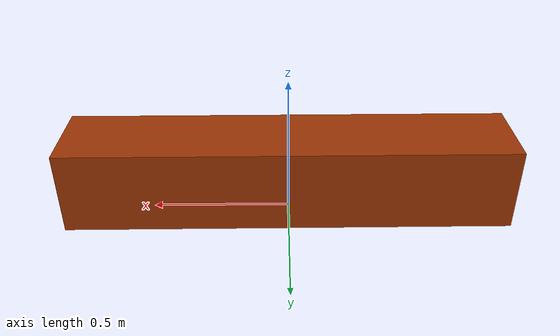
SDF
<?xml version="1.0"?>
<sdf version="1.4">
  <model name='uchannel_place'>
    <static>1</static>
    <link name='link'>
      <pose>0 0 0 0 0 0</pose>
      <collision name='collision'>
        <geometry>
          <mesh>
            <uri>model://uchannel_place_indoor/mesh/uchannel_place_indoor_collision.dae</uri>
            <scale>1 1 1</scale>
          </mesh>
        </geometry>
      </collision>
      <visual name='visual'>
        <cast_shadows>1</cast_shadows>
        <transparency>0</transparency>
        <geometry>
          <mesh>
            <uri>model://uchannel_place_indoor/mesh/uchannel_place_indoor_visual.dae</uri>
            <scale>1 1 1</scale>
          </mesh>
        </geometry>
      </visual>
    </link>
  </model>
</sdf>
